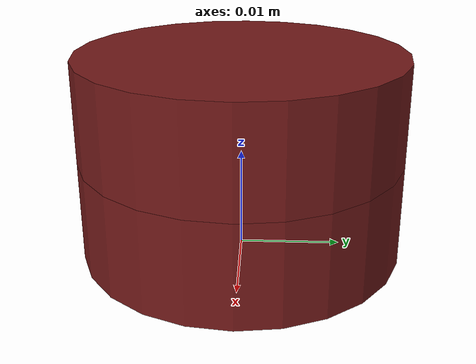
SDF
<?xml version="1.0" ?>
<sdf version="1.7">
  <model name="red_king">
    <static>false</static>

    <link name="piece_link">
      <inertial>
        <mass>0.04</mass>
        <inertia>
          <ixx>4e-6</ixx>
          <iyy>4e-6</iyy>
          <izz>4e-6</izz>
          <ixy>0</ixy>
          <ixz>0</ixz>
          <iyz>0</iyz>
        </inertia>
      </inertial>

      <collision name="collision">
        <pose>0 0 0.010 0 0 0</pose>
        <geometry>
          <cylinder>
            <radius>0.016</radius>
            <length>0.020</length>
          </cylinder>
        </geometry>
      </collision>

      <visual name="bottom_piece">
        <pose>0 0 0.005 0 0 0</pose>
        <geometry>
          <cylinder>
            <radius>0.016</radius>
            <length>0.010</length>
          </cylinder>
        </geometry>
        <material>
          <ambient>0.35 0.08 0.08 1</ambient>
          <diffuse>0.45 0.10 0.10 1</diffuse>
          <specular>0.05 0.05 0.05 1</specular>
        </material>
      </visual>

      <visual name="top_piece">
        <pose>0 0 0.015 0 0 0</pose>
        <geometry>
          <cylinder>
            <radius>0.016</radius>
            <length>0.010</length>
          </cylinder>
        </geometry>
        <material>
          <ambient>0.35 0.08 0.08 1</ambient>
          <diffuse>0.45 0.10 0.10 1</diffuse>
          <specular>0.05 0.05 0.05 1</specular>
        </material>
      </visual>
    </link>
  </model>
</sdf>
